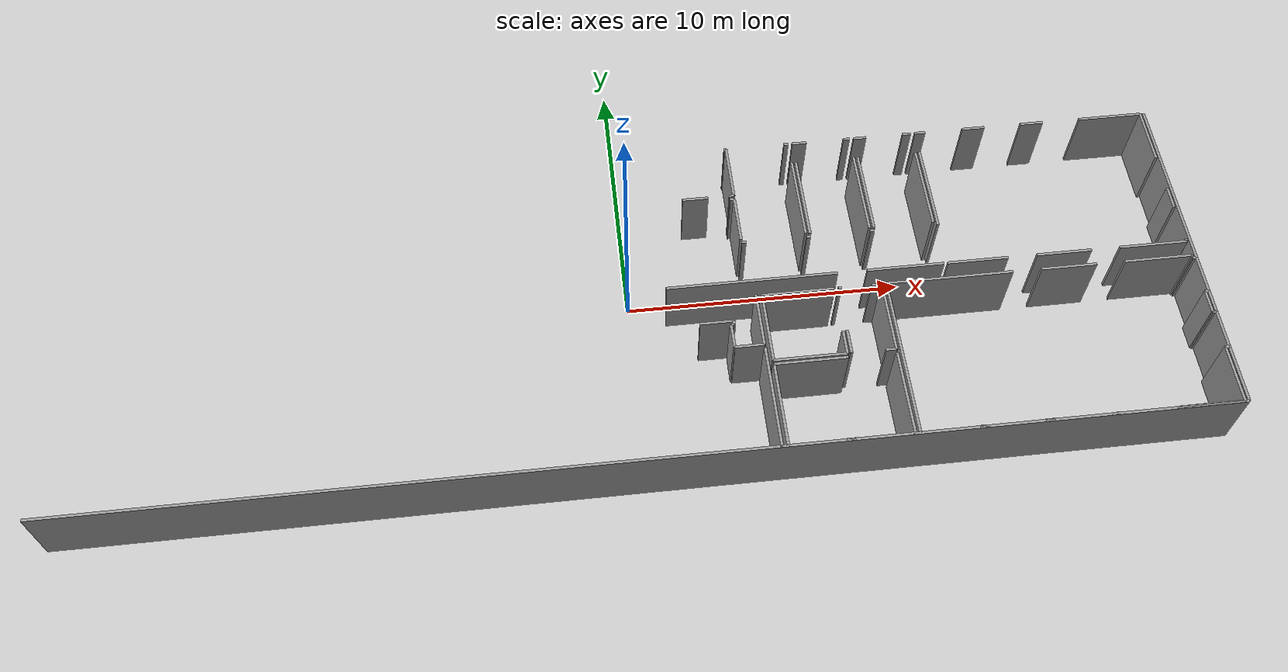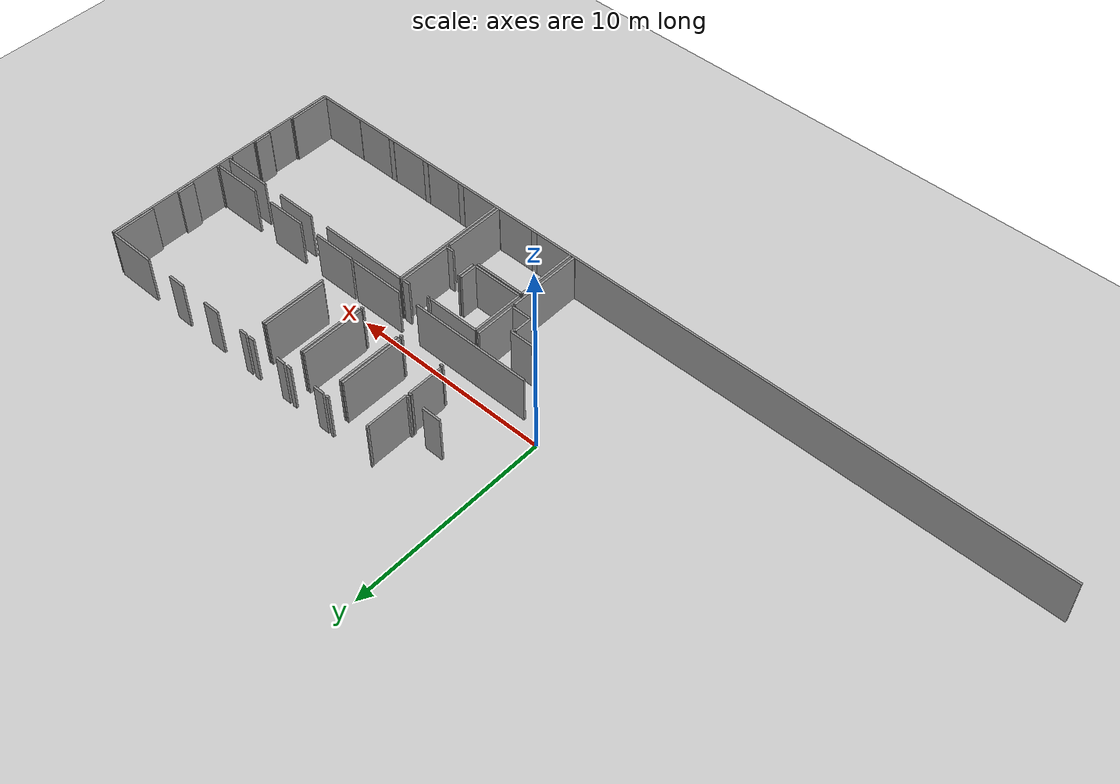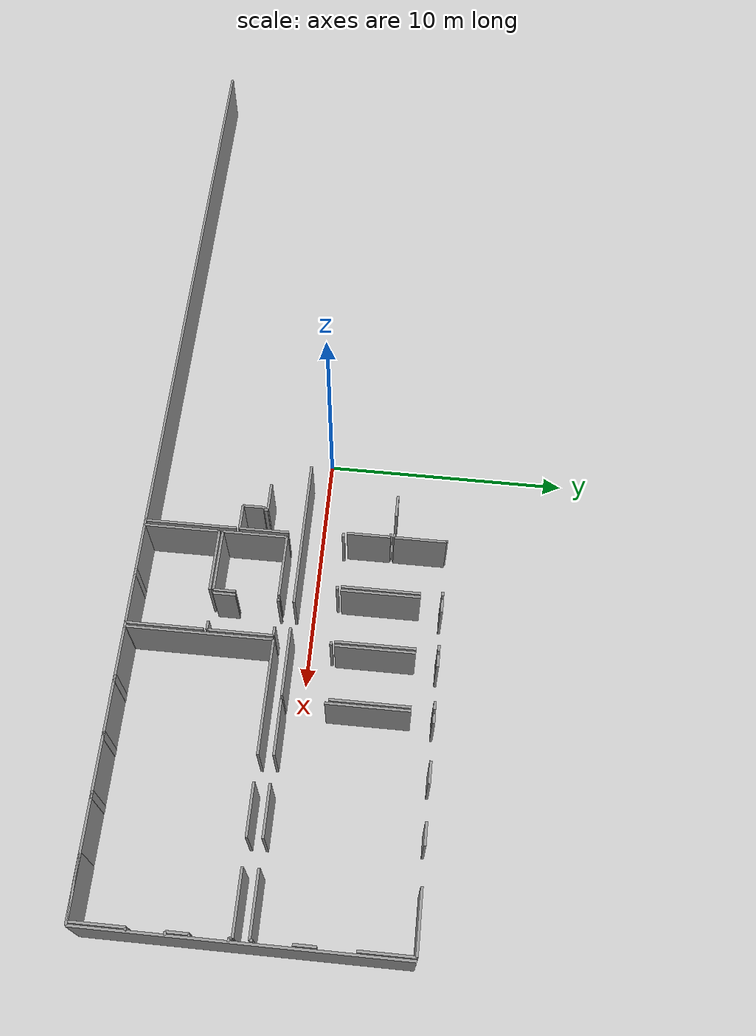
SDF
<sdf version="1.6">
 <world name="default">
  <model name="ground_plane">
   <static>1</static>
   <link name="link">
    <collision name="collision">
     <geometry><plane><normal>0 0 1</normal><size>100 100</size></plane></geometry>
     <surface><friction><ode><mu>100</mu><mu2>50</mu2></ode></friction></surface>
    </collision>
    <visual name="visual">
     <cast_shadows>0</cast_shadows>
     <geometry><plane><normal>0 0 1</normal><size>100 100</size></plane></geometry>
     <material>
      <script><uri>file://media/materials/scripts/gazebo.material</uri><name>Gazebo/Grey</name></script>
     </material>
    </visual>
   </link>
  </model>
  <model name="0510025536_Layout1_PLAN4">
   <static>1</static>
   <link name="Wall_127">
    <collision name="Wall_127_Collision">
     <geometry><box><size>3.75100074977 0.1 2.5</size></box></geometry>
     <pose>1.87550037488 0 1.25 0 0 0</pose>
    </collision>
    <visual name="Wall_127_Visual">
     <pose>1.87550037488 0 1.25 0 0 0</pose>
     <geometry><box><size>3.75100074977 0.1 2.5</size></box></geometry>
     <material>
      <script><uri>file://media/materials/scripts/gazebo.material</uri><name>Gazebo/Grey</name></script>
      <ambient>1 1 1 1</ambient>
     </material>
    </visual>
    <pose>24.5528713576 -8.61223646923 0 0 0 -1.57079632679</pose>
   </link>
   <link name="Wall_128">
    <collision name="Wall_128_Collision">
     <geometry><box><size>0.0629042711365 0.1 2.5</size></box></geometry>
     <pose>0.0314521355682 0 1.25 0 0 0</pose>
    </collision>
    <visual name="Wall_128_Visual">
     <pose>0.0314521355682 0 1.25 0 0 0</pose>
     <geometry><box><size>0.0629042711365 0.1 2.5</size></box></geometry>
     <material>
      <script><uri>file://media/materials/scripts/gazebo.material</uri><name>Gazebo/Grey</name></script>
      <ambient>1 1 1 1</ambient>
     </material>
    </visual>
    <pose>24.5528713576 -12.363237219 0 0 0 3.14159265359</pose>
   </link>
   <link name="Wall_132">
    <collision name="Wall_132_Collision">
     <geometry><box><size>2.02551753059 0.1 2.5</size></box></geometry>
     <pose>1.0127587653 0 1.25 0 0 0</pose>
    </collision>
    <visual name="Wall_132_Visual">
     <pose>1.0127587653 0 1.25 0 0 0</pose>
     <geometry><box><size>2.02551753059 0.1 2.5</size></box></geometry>
     <material>
      <script><uri>file://media/materials/scripts/gazebo.material</uri><name>Gazebo/Grey</name></script>
      <ambient>1 1 1 1</ambient>
     </material>
    </visual>
    <pose>24.5470257081 -6.45296793788 0 0 0 -1.57079632679</pose>
   </link>
   <link name="Wall_133">
    <collision name="Wall_133_Collision">
     <geometry><box><size>1.02762704757 0.1 2.5</size></box></geometry>
     <pose>0.513813523783 0 1.25 0 0 0</pose>
    </collision>
    <visual name="Wall_133_Visual">
     <pose>0.513813523783 0 1.25 0 0 0</pose>
     <geometry><box><size>1.02762704757 0.1 2.5</size></box></geometry>
     <material>
      <script><uri>file://media/materials/scripts/gazebo.material</uri><name>Gazebo/Grey</name></script>
      <ambient>1 1 1 1</ambient>
     </material>
    </visual>
    <pose>24.5470257081 -8.47848546848 0 0 0 3.14159265359</pose>
   </link>
   <link name="Wall_134">
    <collision name="Wall_134_Collision">
     <geometry><box><size>0.903470536656 0.1 2.5</size></box></geometry>
     <pose>0.451735268328 0 1.25 0 0 0</pose>
    </collision>
    <visual name="Wall_134_Visual">
     <pose>0.451735268328 0 1.25 0 0 0</pose>
     <geometry><box><size>0.903470536656 0.1 2.5</size></box></geometry>
     <material>
      <script><uri>file://media/materials/scripts/gazebo.material</uri><name>Gazebo/Grey</name></script>
      <ambient>1 1 1 1</ambient>
     </material>
    </visual>
    <pose>23.5193986606 -8.47848546848 0 0 0 1.57079632679</pose>
   </link>
   <link name="Wall_135">
    <collision name="Wall_135_Collision">
     <geometry><box><size>0.10903406997 0.1 2.5</size></box></geometry>
     <pose>0.0545170349849 0 1.25 0 0 0</pose>
    </collision>
    <visual name="Wall_135_Visual">
     <pose>0.0545170349849 0 1.25 0 0 0</pose>
     <geometry><box><size>0.10903406997 0.1 2.5</size></box></geometry>
     <material>
      <script><uri>file://media/materials/scripts/gazebo.material</uri><name>Gazebo/Grey</name></script>
      <ambient>1 1 1 1</ambient>
     </material>
    </visual>
    <pose>23.5193986606 -7.57501493182 0 0 0 0.0</pose>
   </link>
   <link name="Wall_136">
    <collision name="Wall_136_Collision">
     <geometry><box><size>0.13724568248 0.1 2.5</size></box></geometry>
     <pose>0.0686228412398 0 1.25 0 0 0</pose>
    </collision>
    <visual name="Wall_136_Visual">
     <pose>0.0686228412398 0 1.25 0 0 0</pose>
     <geometry><box><size>0.13724568248 0.1 2.5</size></box></geometry>
     <material>
      <script><uri>file://media/materials/scripts/gazebo.material</uri><name>Gazebo/Grey</name></script>
      <ambient>1 1 1 1</ambient>
     </material>
    </visual>
    <pose>23.6284327306 -7.57501493182 0 0 0 1.57079632679</pose>
   </link>
   <link name="Wall_137">
    <collision name="Wall_137_Collision">
     <geometry><box><size>1.18666683611 0.1 2.5</size></box></geometry>
     <pose>0.593333418053 0 1.25 0 0 0</pose>
    </collision>
    <visual name="Wall_137_Visual">
     <pose>0.593333418053 0 1.25 0 0 0</pose>
     <geometry><box><size>1.18666683611 0.1 2.5</size></box></geometry>
     <material>
      <script><uri>file://media/materials/scripts/gazebo.material</uri><name>Gazebo/Grey</name></script>
      <ambient>1 1 1 1</ambient>
     </material>
    </visual>
    <pose>23.6284327306 -7.43776924934 0 0 0 3.14159265359</pose>
   </link>
   <link name="Wall_146">
    <collision name="Wall_146_Collision">
     <geometry><box><size>0.150779631724 0.1 2.5</size></box></geometry>
     <pose>0.075389815862 0 1.25 0 0 0</pose>
    </collision>
    <visual name="Wall_146_Visual">
     <pose>0.075389815862 0 1.25 0 0 0</pose>
     <geometry><box><size>0.150779631724 0.1 2.5</size></box></geometry>
     <material>
      <script><uri>file://media/materials/scripts/gazebo.material</uri><name>Gazebo/Grey</name></script>
      <ambient>1 1 1 1</ambient>
     </material>
    </visual>
    <pose>24.204673978 -2.29465250156 0 0 0 0.0</pose>
   </link>
   <link name="Wall_147">
    <collision name="Wall_147_Collision">
     <geometry><box><size>1.78059752704 0.1 2.5</size></box></geometry>
     <pose>0.890298763518 0 1.25 0 0 0</pose>
    </collision>
    <visual name="Wall_147_Visual">
     <pose>0.890298763518 0 1.25 0 0 0</pose>
     <geometry><box><size>1.78059752704 0.1 2.5</size></box></geometry>
     <material>
      <script><uri>file://media/materials/scripts/gazebo.material</uri><name>Gazebo/Grey</name></script>
      <ambient>1 1 1 1</ambient>
     </material>
    </visual>
    <pose>24.3554536097 -2.29465250156 0 0 0 -1.57079632679</pose>
   </link>
   <link name="Wall_149">
    <collision name="Wall_149_Collision">
     <geometry><box><size>0.0780902517442 0.1 2.5</size></box></geometry>
     <pose>0.0390451258721 0 1.25 0 0 0</pose>
    </collision>
    <visual name="Wall_149_Visual">
     <pose>0.0390451258721 0 1.25 0 0 0</pose>
     <geometry><box><size>0.0780902517442 0.1 2.5</size></box></geometry>
     <material>
      <script><uri>file://media/materials/scripts/gazebo.material</uri><name>Gazebo/Grey</name></script>
      <ambient>1 1 1 1</ambient>
     </material>
    </visual>
    <pose>24.2828277694 -0.0017473408649 0 0 0 0.0</pose>
   </link>
   <link name="Wall_150">
    <collision name="Wall_150_Collision">
     <geometry><box><size>2.14262749234 0.1 2.5</size></box></geometry>
     <pose>1.07131374617 0 1.25 0 0 0</pose>
    </collision>
    <visual name="Wall_150_Visual">
     <pose>1.07131374617 0 1.25 0 0 0</pose>
     <geometry><box><size>2.14262749234 0.1 2.5</size></box></geometry>
     <material>
      <script><uri>file://media/materials/scripts/gazebo.material</uri><name>Gazebo/Grey</name></script>
      <ambient>1 1 1 1</ambient>
     </material>
    </visual>
    <pose>24.3609180211 -0.0017473408649 0 0 0 -1.57079632679</pose>
   </link>
   <link name="Wall_151">
    <collision name="Wall_151_Collision">
     <geometry><box><size>0.168888437051 0.1 2.5</size></box></geometry>
     <pose>0.0844442185256 0 1.25 0 0 0</pose>
    </collision>
    <visual name="Wall_151_Visual">
     <pose>0.0844442185256 0 1.25 0 0 0</pose>
     <geometry><box><size>0.168888437051 0.1 2.5</size></box></geometry>
     <material>
      <script><uri>file://media/materials/scripts/gazebo.material</uri><name>Gazebo/Grey</name></script>
      <ambient>1 1 1 1</ambient>
     </material>
    </visual>
    <pose>24.3609180211 -2.14437483321 0 0 0 3.14159265359</pose>
   </link>
   <link name="Wall_152">
    <collision name="Wall_152_Collision">
     <geometry><box><size>0.944836101306 0.1 2.5</size></box></geometry>
     <pose>0.472418050653 0 1.25 0 0 0</pose>
    </collision>
    <visual name="Wall_152_Visual">
     <pose>0.472418050653 0 1.25 0 0 0</pose>
     <geometry><box><size>0.944836101306 0.1 2.5</size></box></geometry>
     <material>
      <script><uri>file://media/materials/scripts/gazebo.material</uri><name>Gazebo/Grey</name></script>
      <ambient>1 1 1 1</ambient>
     </material>
    </visual>
    <pose>23.4098562733 -2.14437483321 0 0 0 3.13997194216</pose>
   </link>
   <link name="Wall_153">
    <collision name="Wall_153_Collision">
     <geometry><box><size>0.161517835585 0.1 2.5</size></box></geometry>
     <pose>0.0807589177924 0 1.25 0 0 0</pose>
    </collision>
    <visual name="Wall_153_Visual">
     <pose>0.0807589177924 0 1.25 0 0 0</pose>
     <geometry><box><size>0.161517835585 0.1 2.5</size></box></geometry>
     <material>
      <script><uri>file://media/materials/scripts/gazebo.material</uri><name>Gazebo/Grey</name></script>
      <ambient>1 1 1 1</ambient>
     </material>
    </visual>
    <pose>26.547635689 -0.00495609408954 0 0 0 0.0</pose>
   </link>
   <link name="Wall_154">
    <collision name="Wall_154_Collision">
     <geometry><box><size>3.18544687448 0.1 2.5</size></box></geometry>
     <pose>1.59272343724 0 1.25 0 0 0</pose>
    </collision>
    <visual name="Wall_154_Visual">
     <pose>1.59272343724 0 1.25 0 0 0</pose>
     <geometry><box><size>3.18544687448 0.1 2.5</size></box></geometry>
     <material>
      <script><uri>file://media/materials/scripts/gazebo.material</uri><name>Gazebo/Grey</name></script>
      <ambient>1 1 1 1</ambient>
     </material>
    </visual>
    <pose>26.7091535245 -0.886054313708 0 0 0 -1.57079632679</pose>
   </link>
   <link name="Wall_155">
    <collision name="Wall_155_Collision">
     <geometry><box><size>3.19793241921 0.1 2.5</size></box></geometry>
     <pose>1.5989662096 0 1.25 0 0 0</pose>
    </collision>
    <visual name="Wall_155_Visual">
     <pose>1.5989662096 0 1.25 0 0 0</pose>
     <geometry><box><size>3.19793241921 0.1 2.5</size></box></geometry>
     <material>
      <script><uri>file://media/materials/scripts/gazebo.material</uri><name>Gazebo/Grey</name></script>
      <ambient>1 1 1 1</ambient>
     </material>
    </visual>
    <pose>26.8591071406 -4.07683852029 0 0 0 1.57079632679</pose>
   </link>
   <link name="Wall_156">
    <collision name="Wall_156_Collision">
     <geometry><box><size>0.540976731774 0.1 2.5</size></box></geometry>
     <pose>0.270488365887 0 1.25 0 0 0</pose>
    </collision>
    <visual name="Wall_156_Visual">
     <pose>0.270488365887 0 1.25 0 0 0</pose>
     <geometry><box><size>0.540976731774 0.1 2.5</size></box></geometry>
     <material>
      <script><uri>file://media/materials/scripts/gazebo.material</uri><name>Gazebo/Grey</name></script>
      <ambient>1 1 1 1</ambient>
     </material>
    </visual>
    <pose>26.8591071406 -0.0053119162293 0 0 0 0.0</pose>
   </link>
   <link name="Wall_157">
    <collision name="Wall_157_Collision">
     <geometry><box><size>0.233381199883 0.1 2.5</size></box></geometry>
     <pose>0.116690599942 0 1.25 0 0 0</pose>
    </collision>
    <visual name="Wall_157_Visual">
     <pose>0.116690599942 0 1.25 0 0 0</pose>
     <geometry><box><size>0.233381199883 0.1 2.5</size></box></geometry>
     <material>
      <script><uri>file://media/materials/scripts/gazebo.material</uri><name>Gazebo/Grey</name></script>
      <ambient>1 1 1 1</ambient>
     </material>
    </visual>
    <pose>28.801641865 -0.0053119162293 0 0 0 0.0</pose>
   </link>
   <link name="Wall_158">
    <collision name="Wall_158_Collision">
     <geometry><box><size>3.19694120039 0.1 2.5</size></box></geometry>
     <pose>1.5984706002 0 1.25 0 0 0</pose>
    </collision>
    <visual name="Wall_158_Visual">
     <pose>1.5984706002 0 1.25 0 0 0</pose>
     <geometry><box><size>3.19694120039 0.1 2.5</size></box></geometry>
     <material>
      <script><uri>file://media/materials/scripts/gazebo.material</uri><name>Gazebo/Grey</name></script>
      <ambient>1 1 1 1</ambient>
     </material>
    </visual>
    <pose>29.0350230649 -0.885107572658 0 0 0 -1.57079632679</pose>
   </link>
   <link name="Wall_159">
    <collision name="Wall_159_Collision">
     <geometry><box><size>3.19403743757 0.1 2.5</size></box></geometry>
     <pose>1.59701871879 0 1.25 0 0 0</pose>
    </collision>
    <visual name="Wall_159_Visual">
     <pose>1.59701871879 0 1.25 0 0 0</pose>
     <geometry><box><size>3.19403743757 0.1 2.5</size></box></geometry>
     <material>
      <script><uri>file://media/materials/scripts/gazebo.material</uri><name>Gazebo/Grey</name></script>
      <ambient>1 1 1 1</ambient>
     </material>
    </visual>
    <pose>29.1912035684 -4.08077797969 0 0 0 1.57079632679</pose>
   </link>
   <link name="Wall_160">
    <collision name="Wall_160_Collision">
     <geometry><box><size>0.475912111931 0.1 2.5</size></box></geometry>
     <pose>0.237956055966 0 1.25 0 0 0</pose>
    </collision>
    <visual name="Wall_160_Visual">
     <pose>0.237956055966 0 1.25 0 0 0</pose>
     <geometry><box><size>0.475912111931 0.1 2.5</size></box></geometry>
     <material>
      <script><uri>file://media/materials/scripts/gazebo.material</uri><name>Gazebo/Grey</name></script>
      <ambient>1 1 1 1</ambient>
     </material>
    </visual>
    <pose>29.1912035684 -0.0053119162293 0 0 0 0.0</pose>
   </link>
   <link name="Wall_161">
    <collision name="Wall_161_Collision">
     <geometry><box><size>0.308866325247 0.1 2.5</size></box></geometry>
     <pose>0.154433162623 0 1.25 0 0 0</pose>
    </collision>
    <visual name="Wall_161_Visual">
     <pose>0.154433162623 0 1.25 0 0 0</pose>
     <geometry><box><size>0.308866325247 0.1 2.5</size></box></geometry>
     <material>
      <script><uri>file://media/materials/scripts/gazebo.material</uri><name>Gazebo/Grey</name></script>
      <ambient>1 1 1 1</ambient>
     </material>
    </visual>
    <pose>31.0627009442 -0.0053119162293 0 0 0 0.0</pose>
   </link>
   <link name="Wall_162">
    <collision name="Wall_162_Collision">
     <geometry><box><size>3.18338183528 0.1 2.5</size></box></geometry>
     <pose>1.59169091764 0 1.25 0 0 0</pose>
    </collision>
    <visual name="Wall_162_Visual">
     <pose>1.59169091764 0 1.25 0 0 0</pose>
     <geometry><box><size>3.18338183528 0.1 2.5</size></box></geometry>
     <material>
      <script><uri>file://media/materials/scripts/gazebo.material</uri><name>Gazebo/Grey</name></script>
      <ambient>1 1 1 1</ambient>
     </material>
    </visual>
    <pose>31.3715672694 -0.89167757431 0 0 0 -1.57079632679</pose>
   </link>
   <link name="Wall_163">
    <collision name="Wall_163_Collision">
     <geometry><box><size>2.62958915251 0.1 2.5</size></box></geometry>
     <pose>1.31479457625 0 1.25 0 0 0</pose>
    </collision>
    <visual name="Wall_163_Visual">
     <pose>1.31479457625 0 1.25 0 0 0</pose>
     <geometry><box><size>2.62958915251 0.1 2.5</size></box></geometry>
     <material>
      <script><uri>file://media/materials/scripts/gazebo.material</uri><name>Gazebo/Grey</name></script>
      <ambient>1 1 1 1</ambient>
     </material>
    </visual>
    <pose>24.7596929763 -9.13211803129 0 0 0 1.57079632679</pose>
   </link>
   <link name="Wall_164">
    <collision name="Wall_164_Collision">
     <geometry><box><size>2.5593142799 0.1 2.5</size></box></geometry>
     <pose>1.27965713995 0 1.25 0 0 0</pose>
    </collision>
    <visual name="Wall_164_Visual">
     <pose>1.27965713995 0 1.25 0 0 0</pose>
     <geometry><box><size>2.5593142799 0.1 2.5</size></box></geometry>
     <material>
      <script><uri>file://media/materials/scripts/gazebo.material</uri><name>Gazebo/Grey</name></script>
      <ambient>1 1 1 1</ambient>
     </material>
    </visual>
    <pose>24.7596929763 -6.50252887878 0 0 0 0.0</pose>
   </link>
   <link name="Wall_165">
    <collision name="Wall_165_Collision">
     <geometry><box><size>0.897307188878 0.1 2.5</size></box></geometry>
     <pose>0.448653594439 0 1.25 0 0 0</pose>
    </collision>
    <visual name="Wall_165_Visual">
     <pose>0.448653594439 0 1.25 0 0 0</pose>
     <geometry><box><size>0.897307188878 0.1 2.5</size></box></geometry>
     <material>
      <script><uri>file://media/materials/scripts/gazebo.material</uri><name>Gazebo/Grey</name></script>
      <ambient>1 1 1 1</ambient>
     </material>
    </visual>
    <pose>27.3190072562 -8.23728888945 0 0 0 -1.57079632679</pose>
   </link>
   <link name="Wall_166">
    <collision name="Wall_166_Collision">
     <geometry><box><size>2.55931547958 0.1 2.5</size></box></geometry>
     <pose>1.27965773979 0 1.25 0 0 0</pose>
    </collision>
    <visual name="Wall_166_Visual">
     <pose>1.27965773979 0 1.25 0 0 0</pose>
     <geometry><box><size>2.55931547958 0.1 2.5</size></box></geometry>
     <material>
      <script><uri>file://media/materials/scripts/gazebo.material</uri><name>Gazebo/Grey</name></script>
      <ambient>1 1 1 1</ambient>
     </material>
    </visual>
    <pose>27.3190072562 -9.13459607833 0 0 0 3.14062440741</pose>
   </link>
   <link name="Wall_167">
    <collision name="Wall_167_Collision">
     <geometry><box><size>3.07995831798 0.1 2.5</size></box></geometry>
     <pose>1.53997915899 0 1.25 0 0 0</pose>
    </collision>
    <visual name="Wall_167_Visual">
     <pose>1.53997915899 0 1.25 0 0 0</pose>
     <geometry><box><size>3.07995831798 0.1 2.5</size></box></geometry>
     <material>
      <script><uri>file://media/materials/scripts/gazebo.material</uri><name>Gazebo/Grey</name></script>
      <ambient>1 1 1 1</ambient>
     </material>
    </visual>
    <pose>24.7604554523 -12.3599966959 0 0 0 1.57079632679</pose>
   </link>
   <link name="Wall_168">
    <collision name="Wall_168_Collision">
     <geometry><box><size>2.56979832509 0.1 2.5</size></box></geometry>
     <pose>1.28489916255 0 1.25 0 0 0</pose>
    </collision>
    <visual name="Wall_168_Visual">
     <pose>1.28489916255 0 1.25 0 0 0</pose>
     <geometry><box><size>2.56979832509 0.1 2.5</size></box></geometry>
     <material>
      <script><uri>file://media/materials/scripts/gazebo.material</uri><name>Gazebo/Grey</name></script>
      <ambient>1 1 1 1</ambient>
     </material>
    </visual>
    <pose>24.7604554523 -9.28003837796 0 0 0 0.0</pose>
   </link>
   <link name="Wall_169">
    <collision name="Wall_169_Collision">
     <geometry><box><size>3.08446963439 0.1 2.5</size></box></geometry>
     <pose>1.5422348172 0 1.25 0 0 0</pose>
    </collision>
    <visual name="Wall_169_Visual">
     <pose>1.5422348172 0 1.25 0 0 0</pose>
     <geometry><box><size>3.08446963439 0.1 2.5</size></box></geometry>
     <material>
      <script><uri>file://media/materials/scripts/gazebo.material</uri><name>Gazebo/Grey</name></script>
      <ambient>1 1 1 1</ambient>
     </material>
    </visual>
    <pose>29.0118946258 -9.28003837796 0 0 0 -1.57079632679</pose>
   </link>
   <link name="Wall_170">
    <collision name="Wall_170_Collision">
     <geometry><box><size>0.0640479851571 0.1 2.5</size></box></geometry>
     <pose>0.0320239925786 0 1.25 0 0 0</pose>
    </collision>
    <visual name="Wall_170_Visual">
     <pose>0.0320239925786 0 1.25 0 0 0</pose>
     <geometry><box><size>0.0640479851571 0.1 2.5</size></box></geometry>
     <material>
      <script><uri>file://media/materials/scripts/gazebo.material</uri><name>Gazebo/Grey</name></script>
      <ambient>1 1 1 1</ambient>
     </material>
    </visual>
    <pose>29.0118946258 -12.3645080124 0 0 0 3.14159265359</pose>
   </link>
   <link name="Wall_171">
    <collision name="Wall_171_Collision">
     <geometry><box><size>0.293680344639 0.1 2.5</size></box></geometry>
     <pose>0.14684017232 0 1.25 0 0 0</pose>
    </collision>
    <visual name="Wall_171_Visual">
     <pose>0.14684017232 0 1.25 0 0 0</pose>
     <geometry><box><size>0.293680344639 0.1 2.5</size></box></geometry>
     <material>
      <script><uri>file://media/materials/scripts/gazebo.material</uri><name>Gazebo/Grey</name></script>
      <ambient>1 1 1 1</ambient>
     </material>
    </visual>
    <pose>27.0191635638 -12.3645080124 0 0 0 3.14159265359</pose>
   </link>
   <link name="Wall_172">
    <collision name="Wall_172_Collision">
     <geometry><box><size>0.0305794842291 0.1 2.5</size></box></geometry>
     <pose>0.0152897421145 0 1.25 0 0 0</pose>
    </collision>
    <visual name="Wall_172_Visual">
     <pose>0.0152897421145 0 1.25 0 0 0</pose>
     <geometry><box><size>0.0305794842291 0.1 2.5</size></box></geometry>
     <material>
      <script><uri>file://media/materials/scripts/gazebo.material</uri><name>Gazebo/Grey</name></script>
      <ambient>1 1 1 1</ambient>
     </material>
    </visual>
    <pose>24.7907003342 -12.3645080124 0 0 0 2.99352465175</pose>
   </link>
   <link name="Wall_173">
    <collision name="Wall_173_Collision">
     <geometry><box><size>0.901945584628 0.1 2.5</size></box></geometry>
     <pose>0.450972792314 0 1.25 0 0 0</pose>
    </collision>
    <visual name="Wall_173_Visual">
     <pose>0.450972792314 0 1.25 0 0 0</pose>
     <geometry><box><size>0.901945584628 0.1 2.5</size></box></geometry>
     <material>
      <script><uri>file://media/materials/scripts/gazebo.material</uri><name>Gazebo/Grey</name></script>
      <ambient>1 1 1 1</ambient>
     </material>
    </visual>
    <pose>27.4616538105 -9.13078369826 0 0 0 1.57079632679</pose>
   </link>
   <link name="Wall_174">
    <collision name="Wall_174_Collision">
     <geometry><box><size>0.112083974025 0.1 2.5</size></box></geometry>
     <pose>0.0560419870125 0 1.25 0 0 0</pose>
    </collision>
    <visual name="Wall_174_Visual">
     <pose>0.0560419870125 0 1.25 0 0 0</pose>
     <geometry><box><size>0.112083974025 0.1 2.5</size></box></geometry>
     <material>
      <script><uri>file://media/materials/scripts/gazebo.material</uri><name>Gazebo/Grey</name></script>
      <ambient>1 1 1 1</ambient>
     </material>
    </visual>
    <pose>27.4616538105 -6.49769986403 0 0 0 0.0</pose>
   </link>
   <link name="Wall_175">
    <collision name="Wall_175_Collision">
     <geometry><box><size>0.369737327013 0.1 2.5</size></box></geometry>
     <pose>0.184868663507 0 1.25 0 0 0</pose>
    </collision>
    <visual name="Wall_175_Visual">
     <pose>0.184868663507 0 1.25 0 0 0</pose>
     <geometry><box><size>0.369737327013 0.1 2.5</size></box></geometry>
     <material>
      <script><uri>file://media/materials/scripts/gazebo.material</uri><name>Gazebo/Grey</name></script>
      <ambient>1 1 1 1</ambient>
     </material>
    </visual>
    <pose>28.6462873772 -6.49769986403 0 0 0 0.0</pose>
   </link>
   <link name="Wall_176">
    <collision name="Wall_176_Collision">
     <geometry><box><size>2.63689621431 0.1 2.5</size></box></geometry>
     <pose>1.31844810715 0 1.25 0 0 0</pose>
    </collision>
    <visual name="Wall_176_Visual">
     <pose>1.31844810715 0 1.25 0 0 0</pose>
     <geometry><box><size>2.63689621431 0.1 2.5</size></box></geometry>
     <material>
      <script><uri>file://media/materials/scripts/gazebo.material</uri><name>Gazebo/Grey</name></script>
      <ambient>1 1 1 1</ambient>
     </material>
    </visual>
    <pose>29.0160247042 -6.49769986403 0 0 0 -1.57079632679</pose>
   </link>
   <link name="Wall_177">
    <collision name="Wall_177_Collision">
     <geometry><box><size>0.367640517975 0.1 2.5</size></box></geometry>
     <pose>0.183820258988 0 1.25 0 0 0</pose>
    </collision>
    <visual name="Wall_177_Visual">
     <pose>0.183820258988 0 1.25 0 0 0</pose>
     <geometry><box><size>0.367640517975 0.1 2.5</size></box></geometry>
     <material>
      <script><uri>file://media/materials/scripts/gazebo.material</uri><name>Gazebo/Grey</name></script>
      <ambient>1 1 1 1</ambient>
     </material>
    </visual>
    <pose>29.0160247042 -9.13459607833 0 0 0 3.14159265359</pose>
   </link>
   <link name="Wall_178">
    <collision name="Wall_178_Collision">
     <geometry><box><size>0.151669187073 0.1 2.5</size></box></geometry>
     <pose>0.0758345935367 0 1.25 0 0 0</pose>
    </collision>
    <visual name="Wall_178_Visual">
     <pose>0.0758345935367 0 1.25 0 0 0</pose>
     <geometry><box><size>0.151669187073 0.1 2.5</size></box></geometry>
     <material>
      <script><uri>file://media/materials/scripts/gazebo.material</uri><name>Gazebo/Grey</name></script>
      <ambient>1 1 1 1</ambient>
     </material>
    </visual>
    <pose>24.3672084482 -4.2195486142 0 0 0 0.0</pose>
   </link>
   <link name="Wall_179">
    <collision name="Wall_179_Collision">
     <geometry><box><size>0.142519474908 0.1 2.5</size></box></geometry>
     <pose>0.0712597374541 0 1.25 0 0 0</pose>
    </collision>
    <visual name="Wall_179_Visual">
     <pose>0.0712597374541 0 1.25 0 0 0</pose>
     <geometry><box><size>0.142519474908 0.1 2.5</size></box></geometry>
     <material>
      <script><uri>file://media/materials/scripts/gazebo.material</uri><name>Gazebo/Grey</name></script>
      <ambient>1 1 1 1</ambient>
     </material>
    </visual>
    <pose>26.7127117459 -4.2195486142 0 0 0 0.0</pose>
   </link>
   <link name="Wall_180">
    <collision name="Wall_180_Collision">
     <geometry><box><size>0.143409030258 0.1 2.5</size></box></geometry>
     <pose>0.0717045151288 0 1.25 0 0 0</pose>
    </collision>
    <visual name="Wall_180_Visual">
     <pose>0.0717045151288 0 1.25 0 0 0</pose>
     <geometry><box><size>0.143409030258 0.1 2.5</size></box></geometry>
     <material>
      <script><uri>file://media/materials/scripts/gazebo.material</uri><name>Gazebo/Grey</name></script>
      <ambient>1 1 1 1</ambient>
     </material>
    </visual>
    <pose>29.0389625243 -4.2195486142 0 0 0 0.0</pose>
   </link>
   <link name="Wall_181">
    <collision name="Wall_181_Collision">
     <geometry><box><size>2.76677129532 0.1 2.5</size></box></geometry>
     <pose>1.38338564766 0 1.25 0 0 0</pose>
    </collision>
    <visual name="Wall_181_Visual">
     <pose>1.38338564766 0 1.25 0 0 0</pose>
     <geometry><box><size>2.76677129532 0.1 2.5</size></box></geometry>
     <material>
      <script><uri>file://media/materials/scripts/gazebo.material</uri><name>Gazebo/Grey</name></script>
      <ambient>1 1 1 1</ambient>
     </material>
    </visual>
    <pose>31.3797638866 -5.87119873937 0 0 0 3.14159265359</pose>
   </link>
   <link name="Wall_182">
    <collision name="Wall_182_Collision">
     <geometry><box><size>6.1033663316 0.1 2.5</size></box></geometry>
     <pose>3.0516831658 0 1.25 0 0 0</pose>
    </collision>
    <visual name="Wall_182_Visual">
     <pose>3.0516831658 0 1.25 0 0 0</pose>
     <geometry><box><size>6.1033663316 0.1 2.5</size></box></geometry>
     <material>
      <script><uri>file://media/materials/scripts/gazebo.material</uri><name>Gazebo/Grey</name></script>
      <ambient>1 1 1 1</ambient>
     </material>
    </visual>
    <pose>27.5516259801 -5.87119873937 0 0 0 3.14159265359</pose>
   </link>
   <link name="Wall_190">
    <collision name="Wall_190_Collision">
     <geometry><box><size>0.394136559454 0.1 2.5</size></box></geometry>
     <pose>0.197068279727 0 1.25 0 0 0</pose>
    </collision>
    <visual name="Wall_190_Visual">
     <pose>0.197068279727 0 1.25 0 0 0</pose>
     <geometry><box><size>0.394136559454 0.1 2.5</size></box></geometry>
     <material>
      <script><uri>file://media/materials/scripts/gazebo.material</uri><name>Gazebo/Grey</name></script>
      <ambient>1 1 1 1</ambient>
     </material>
    </visual>
    <pose>31.5302893596 -0.00292282471947 0 0 0 0.0</pose>
   </link>
   <link name="Wall_191">
    <collision name="Wall_191_Collision">
     <geometry><box><size>0.85276588174 0.1 2.5</size></box></geometry>
     <pose>0.42638294087 0 1.25 0 0 0</pose>
    </collision>
    <visual name="Wall_191_Visual">
     <pose>0.42638294087 0 1.25 0 0 0</pose>
     <geometry><box><size>0.85276588174 0.1 2.5</size></box></geometry>
     <material>
      <script><uri>file://media/materials/scripts/gazebo.material</uri><name>Gazebo/Grey</name></script>
      <ambient>1 1 1 1</ambient>
     </material>
    </visual>
    <pose>33.3432667014 -0.00292282471947 0 0 0 0.0</pose>
   </link>
   <link name="Wall_192">
    <collision name="Wall_192_Collision">
     <geometry><box><size>0.860708340217 0.1 2.5</size></box></geometry>
     <pose>0.430354170108 0 1.25 0 0 0</pose>
    </collision>
    <visual name="Wall_192_Visual">
     <pose>0.430354170108 0 1.25 0 0 0</pose>
     <geometry><box><size>0.860708340217 0.1 2.5</size></box></geometry>
     <material>
      <script><uri>file://media/materials/scripts/gazebo.material</uri><name>Gazebo/Grey</name></script>
      <ambient>1 1 1 1</ambient>
     </material>
    </visual>
    <pose>35.5880596256 -0.00292282471947 0 0 0 0.0</pose>
   </link>
   <link name="Wall_193">
    <collision name="Wall_193_Collision">
     <geometry><box><size>2.37854392497 0.1 2.5</size></box></geometry>
     <pose>1.18927196249 0 1.25 0 0 0</pose>
    </collision>
    <visual name="Wall_193_Visual">
     <pose>1.18927196249 0 1.25 0 0 0</pose>
     <geometry><box><size>2.37854392497 0.1 2.5</size></box></geometry>
     <material>
      <script><uri>file://media/materials/scripts/gazebo.material</uri><name>Gazebo/Grey</name></script>
      <ambient>1 1 1 1</ambient>
     </material>
    </visual>
    <pose>37.8576330203 -0.00292282471947 0 0 0 0.0</pose>
   </link>
   <link name="Wall_194">
    <collision name="Wall_194_Collision">
     <geometry><box><size>2.10266739525 0.1 2.5</size></box></geometry>
     <pose>1.05133369763 0 1.25 0 0 0</pose>
    </collision>
    <visual name="Wall_194_Visual">
     <pose>1.05133369763 0 1.25 0 0 0</pose>
     <geometry><box><size>2.10266739525 0.1 2.5</size></box></geometry>
     <material>
      <script><uri>file://media/materials/scripts/gazebo.material</uri><name>Gazebo/Grey</name></script>
      <ambient>1 1 1 1</ambient>
     </material>
    </visual>
    <pose>40.2361769453 -0.00292282471947 0 0 0 -1.57079632679</pose>
   </link>
   <link name="Wall_195">
    <collision name="Wall_195_Collision">
     <geometry><box><size>0.85683242048 0.1 2.5</size></box></geometry>
     <pose>0.42841621024 0 1.25 0 0 0</pose>
    </collision>
    <visual name="Wall_195_Visual">
     <pose>0.42841621024 0 1.25 0 0 0</pose>
     <geometry><box><size>0.85683242048 0.1 2.5</size></box></geometry>
     <material>
      <script><uri>file://media/materials/scripts/gazebo.material</uri><name>Gazebo/Grey</name></script>
      <ambient>1 1 1 1</ambient>
     </material>
    </visual>
    <pose>40.2361769453 -3.5112083974 0 0 0 -1.57079632679</pose>
   </link>
   <link name="Wall_196">
    <collision name="Wall_196_Collision">
     <geometry><box><size>0.104776912226 0.1 2.5</size></box></geometry>
     <pose>0.0523884561132 0 1.25 0 0 0</pose>
    </collision>
    <visual name="Wall_196_Visual">
     <pose>0.0523884561132 0 1.25 0 0 0</pose>
     <geometry><box><size>0.104776912226 0.1 2.5</size></box></geometry>
     <material>
      <script><uri>file://media/materials/scripts/gazebo.material</uri><name>Gazebo/Grey</name></script>
      <ambient>1 1 1 1</ambient>
     </material>
    </visual>
    <pose>40.2361769453 -5.76521457346 0 0 0 -1.57079632679</pose>
   </link>
   <link name="Wall_197">
    <collision name="Wall_197_Collision">
     <geometry><box><size>2.45269471731 0.1 2.5</size></box></geometry>
     <pose>1.22634735866 0 1.25 0 0 0</pose>
    </collision>
    <visual name="Wall_197_Visual">
     <pose>1.22634735866 0 1.25 0 0 0</pose>
     <geometry><box><size>2.45269471731 0.1 2.5</size></box></geometry>
     <material>
      <script><uri>file://media/materials/scripts/gazebo.material</uri><name>Gazebo/Grey</name></script>
      <ambient>1 1 1 1</ambient>
     </material>
    </visual>
    <pose>40.2361769453 -5.86999148568 0 0 0 3.14159265359</pose>
   </link>
   <link name="Wall_198">
    <collision name="Wall_198_Collision">
     <geometry><box><size>1.992349824 0.1 2.5</size></box></geometry>
     <pose>0.996174911998 0 1.25 0 0 0</pose>
    </collision>
    <visual name="Wall_198_Visual">
     <pose>0.996174911998 0 1.25 0 0 0</pose>
     <geometry><box><size>1.992349824 0.1 2.5</size></box></geometry>
     <material>
      <script><uri>file://media/materials/scripts/gazebo.material</uri><name>Gazebo/Grey</name></script>
      <ambient>1 1 1 1</ambient>
     </material>
    </visual>
    <pose>36.7449898972 -5.86999148568 0 0 0 3.14159265359</pose>
   </link>
   <link name="Wall_199">
    <collision name="Wall_199_Collision">
     <geometry><box><size>2.18214281176 0.1 2.5</size></box></geometry>
     <pose>1.09107140588 0 1.25 0 0 0</pose>
    </collision>
    <visual name="Wall_199_Visual">
     <pose>1.09107140588 0 1.25 0 0 0</pose>
     <geometry><box><size>2.18214281176 0.1 2.5</size></box></geometry>
     <material>
      <script><uri>file://media/materials/scripts/gazebo.material</uri><name>Gazebo/Grey</name></script>
      <ambient>1 1 1 1</ambient>
     </material>
    </visual>
    <pose>33.7010585709 -5.86999148568 0 0 0 3.14159265359</pose>
   </link>
   <link name="Wall_200">
    <collision name="Wall_200_Collision">
     <geometry><box><size>3.32391251859 0.1 2.5</size></box></geometry>
     <pose>1.66195625929 0 1.25 0 0 0</pose>
    </collision>
    <visual name="Wall_200_Visual">
     <pose>1.66195625929 0 1.25 0 0 0</pose>
     <geometry><box><size>3.32391251859 0.1 2.5</size></box></geometry>
     <material>
      <script><uri>file://media/materials/scripts/gazebo.material</uri><name>Gazebo/Grey</name></script>
      <ambient>1 1 1 1</ambient>
     </material>
    </visual>
    <pose>31.5189157591 -4.20607820462 0 0 0 1.57079632679</pose>
   </link>
   <link name="Wall_201">
    <collision name="Wall_201_Collision">
     <geometry><box><size>5.89000012708 0.1 2.5</size></box></geometry>
     <pose>2.94500006354 0 1.25 0 0 0</pose>
    </collision>
    <visual name="Wall_201_Visual">
     <pose>2.94500006354 0 1.25 0 0 0</pose>
     <geometry><box><size>5.89000012708 0.1 2.5</size></box></geometry>
     <material>
      <script><uri>file://media/materials/scripts/gazebo.material</uri><name>Gazebo/Grey</name></script>
      <ambient>1 1 1 1</ambient>
     </material>
    </visual>
    <pose>29.1771613018 -12.3662871231 0 0 0 1.57079632679</pose>
   </link>
   <link name="Wall_202">
    <collision name="Wall_202_Collision">
     <geometry><box><size>4.55617542031 0.1 2.5</size></box></geometry>
     <pose>2.27808771016 0 1.25 0 0 0</pose>
    </collision>
    <visual name="Wall_202_Visual">
     <pose>2.27808771016 0 1.25 0 0 0</pose>
     <geometry><box><size>4.55617542031 0.1 2.5</size></box></geometry>
     <material>
      <script><uri>file://media/materials/scripts/gazebo.material</uri><name>Gazebo/Grey</name></script>
      <ambient>1 1 1 1</ambient>
     </material>
    </visual>
    <pose>29.1771613018 -6.47628699597 0 0 0 0.0</pose>
   </link>
   <link name="Wall_203">
    <collision name="Wall_203_Collision">
     <geometry><box><size>2.01541472341 0.1 2.5</size></box></geometry>
     <pose>1.00770736171 0 1.25 0 0 0</pose>
    </collision>
    <visual name="Wall_203_Visual">
     <pose>1.00770736171 0 1.25 0 0 0</pose>
     <geometry><box><size>2.01541472341 0.1 2.5</size></box></geometry>
     <material>
      <script><uri>file://media/materials/scripts/gazebo.material</uri><name>Gazebo/Grey</name></script>
      <ambient>1 1 1 1</ambient>
     </material>
    </visual>
    <pose>34.7573420086 -6.47628699597 0 0 0 0.0</pose>
   </link>
   <link name="Wall_204">
    <collision name="Wall_204_Collision">
     <geometry><box><size>2.42861318321 0.1 2.5</size></box></geometry>
     <pose>1.21430659161 0 1.25 0 0 0</pose>
    </collision>
    <visual name="Wall_204_Visual">
     <pose>1.21430659161 0 1.25 0 0 0</pose>
     <geometry><box><size>2.42861318321 0.1 2.5</size></box></geometry>
     <material>
      <script><uri>file://media/materials/scripts/gazebo.material</uri><name>Gazebo/Grey</name></script>
      <ambient>1 1 1 1</ambient>
     </material>
    </visual>
    <pose>37.7987952879 -6.47628699597 0 0 0 0.0</pose>
   </link>
   <link name="Wall_205">
    <collision name="Wall_205_Collision">
     <geometry><box><size>0.120598289512 0.1 2.5</size></box></geometry>
     <pose>0.0602991447561 0 1.25 0 0 0</pose>
    </collision>
    <visual name="Wall_205_Visual">
     <pose>0.0602991447561 0 1.25 0 0 0</pose>
     <geometry><box><size>0.120598289512 0.1 2.5</size></box></geometry>
     <material>
      <script><uri>file://media/materials/scripts/gazebo.material</uri><name>Gazebo/Grey</name></script>
      <ambient>1 1 1 1</ambient>
     </material>
    </visual>
    <pose>40.2274084711 -6.47628699597 0 0 0 -1.57079632679</pose>
   </link>
   <link name="Wall_206">
    <collision name="Wall_206_Collision">
     <geometry><box><size>0.1383893965 0.1 2.5</size></box></geometry>
     <pose>0.0691946982501 0 1.25 0 0 0</pose>
    </collision>
    <visual name="Wall_206_Visual">
     <pose>0.0691946982501 0 1.25 0 0 0</pose>
     <geometry><box><size>0.1383893965 0.1 2.5</size></box></geometry>
     <material>
      <script><uri>file://media/materials/scripts/gazebo.material</uri><name>Gazebo/Grey</name></script>
      <ambient>1 1 1 1</ambient>
     </material>
    </visual>
    <pose>40.2274084711 -6.59688528548 0 0 0 0.0</pose>
   </link>
   <link name="Wall_207">
    <collision name="Wall_207_Collision">
     <geometry><box><size>0.127524113304 0.1 2.5</size></box></geometry>
     <pose>0.063762056652 0 1.25 0 0 0</pose>
    </collision>
    <visual name="Wall_207_Visual">
     <pose>0.063762056652 0 1.25 0 0 0</pose>
     <geometry><box><size>0.127524113304 0.1 2.5</size></box></geometry>
     <material>
      <script><uri>file://media/materials/scripts/gazebo.material</uri><name>Gazebo/Grey</name></script>
      <ambient>1 1 1 1</ambient>
     </material>
    </visual>
    <pose>40.3657978676 -8.00581387961 0 0 0 3.14159265359</pose>
   </link>
   <link name="Wall_208">
    <collision name="Wall_208_Collision">
     <geometry><box><size>0.845712978613 0.1 2.5</size></box></geometry>
     <pose>0.422856489306 0 1.25 0 0 0</pose>
    </collision>
    <visual name="Wall_208_Visual">
     <pose>0.422856489306 0 1.25 0 0 0</pose>
     <geometry><box><size>0.845712978613 0.1 2.5</size></box></geometry>
     <material>
      <script><uri>file://media/materials/scripts/gazebo.material</uri><name>Gazebo/Grey</name></script>
      <ambient>1 1 1 1</ambient>
     </material>
    </visual>
    <pose>40.2382737543 -8.00581387961 0 0 0 -1.57079632679</pose>
   </link>
   <link name="Wall_209">
    <collision name="Wall_209_Collision">
     <geometry><box><size>0.126698097622 0.1 2.5</size></box></geometry>
     <pose>0.0633490488112 0 1.25 0 0 0</pose>
    </collision>
    <visual name="Wall_209_Visual">
     <pose>0.0633490488112 0 1.25 0 0 0</pose>
     <geometry><box><size>0.126698097622 0.1 2.5</size></box></geometry>
     <material>
      <script><uri>file://media/materials/scripts/gazebo.material</uri><name>Gazebo/Grey</name></script>
      <ambient>1 1 1 1</ambient>
     </material>
    </visual>
    <pose>40.2382737543 -8.85152685822 0 0 0 0.0</pose>
   </link>
   <link name="Wall_210">
    <collision name="Wall_210_Collision">
     <geometry><box><size>0.131082334702 0.1 2.5</size></box></geometry>
     <pose>0.0655411673508 0 1.25 0 0 0</pose>
    </collision>
    <visual name="Wall_210_Visual">
     <pose>0.0655411673508 0 1.25 0 0 0</pose>
     <geometry><box><size>0.131082334702 0.1 2.5</size></box></geometry>
     <material>
      <script><uri>file://media/materials/scripts/gazebo.material</uri><name>Gazebo/Grey</name></script>
      <ambient>1 1 1 1</ambient>
     </material>
    </visual>
    <pose>40.3649718519 -10.259565897 0 0 0 3.14159265359</pose>
   </link>
   <link name="Wall_211">
    <collision name="Wall_211_Collision">
     <geometry><box><size>2.10043079895 0.1 2.5</size></box></geometry>
     <pose>1.05021539947 0 1.25 0 0 0</pose>
    </collision>
    <visual name="Wall_211_Visual">
     <pose>1.05021539947 0 1.25 0 0 0</pose>
     <geometry><box><size>2.10043079895 0.1 2.5</size></box></geometry>
     <material>
      <script><uri>file://media/materials/scripts/gazebo.material</uri><name>Gazebo/Grey</name></script>
      <ambient>1 1 1 1</ambient>
     </material>
    </visual>
    <pose>40.2338895172 -10.259565897 0 0 0 -1.57079632679</pose>
   </link>
   <link name="Wall_212">
    <collision name="Wall_212_Collision">
     <geometry><box><size>2.34378772668 0.1 2.5</size></box></geometry>
     <pose>1.17189386334 0 1.25 0 0 0</pose>
    </collision>
    <visual name="Wall_212_Visual">
     <pose>1.17189386334 0 1.25 0 0 0</pose>
     <geometry><box><size>2.34378772668 0.1 2.5</size></box></geometry>
     <material>
      <script><uri>file://media/materials/scripts/gazebo.material</uri><name>Gazebo/Grey</name></script>
      <ambient>1 1 1 1</ambient>
     </material>
    </visual>
    <pose>40.2338895172 -12.3599966959 0 0 0 3.14159265359</pose>
   </link>
   <link name="Wall_213">
    <collision name="Wall_213_Collision">
     <geometry><box><size>0.301813422119 0.1 2.5</size></box></geometry>
     <pose>0.15090671106 0 1.25 0 0 0</pose>
    </collision>
    <visual name="Wall_213_Visual">
     <pose>0.15090671106 0 1.25 0 0 0</pose>
     <geometry><box><size>0.301813422119 0.1 2.5</size></box></geometry>
     <material>
      <script><uri>file://media/materials/scripts/gazebo.material</uri><name>Gazebo/Grey</name></script>
      <ambient>1 1 1 1</ambient>
     </material>
    </visual>
    <pose>35.9482660025 -12.3599966959 0 0 0 3.14159265359</pose>
   </link>
   <link name="Wall_214">
    <collision name="Wall_214_Collision">
     <geometry><box><size>0.308802785579 0.1 2.5</size></box></geometry>
     <pose>0.15440139279 0 1.25 0 0 0</pose>
    </collision>
    <visual name="Wall_214_Visual">
     <pose>0.15440139279 0 1.25 0 0 0</pose>
     <geometry><box><size>0.308802785579 0.1 2.5</size></box></geometry>
     <material>
      <script><uri>file://media/materials/scripts/gazebo.material</uri><name>Gazebo/Grey</name></script>
      <ambient>1 1 1 1</ambient>
     </material>
    </visual>
    <pose>33.7193579952 -12.3599966959 0 0 0 3.14159265359</pose>
   </link>
   <link name="Wall_215">
    <collision name="Wall_215_Collision">
     <geometry><box><size>0.314330736679 0.1 2.5</size></box></geometry>
     <pose>0.157165368339 0 1.25 0 0 0</pose>
    </collision>
    <visual name="Wall_215_Visual">
     <pose>0.157165368339 0 1.25 0 0 0</pose>
     <geometry><box><size>0.314330736679 0.1 2.5</size></box></geometry>
     <material>
      <script><uri>file://media/materials/scripts/gazebo.material</uri><name>Gazebo/Grey</name></script>
      <ambient>1 1 1 1</ambient>
     </material>
    </visual>
    <pose>31.4889885756 -12.3599966959 0 0 0 3.14159265359</pose>
   </link>
   <link name="Wall_216">
    <collision name="Wall_216_Collision">
     <geometry><box><size>0.0694167599374 0.1 2.5</size></box></geometry>
     <pose>0.0347083799687 0 1.25 0 0 0</pose>
    </collision>
    <visual name="Wall_216_Visual">
     <pose>0.0347083799687 0 1.25 0 0 0</pose>
     <geometry><box><size>0.0694167599374 0.1 2.5</size></box></geometry>
     <material>
      <script><uri>file://media/materials/scripts/gazebo.material</uri><name>Gazebo/Grey</name></script>
      <ambient>1 1 1 1</ambient>
     </material>
    </visual>
    <pose>29.2462924604 -12.3599966959 0 0 0 -3.05084989575</pose>
   </link>
   <link name="Wall_217">
    <collision name="Wall_217_Collision">
     <geometry><box><size>12.3694641064 0.1 2.5</size></box></geometry>
     <pose>6.18473205322 0 1.25 0 0 0</pose>
    </collision>
    <visual name="Wall_217_Visual">
     <pose>6.18473205322 0 1.25 0 0 0</pose>
     <geometry><box><size>12.3694641064 0.1 2.5</size></box></geometry>
     <material>
      <script><uri>file://media/materials/scripts/gazebo.material</uri><name>Gazebo/Grey</name></script>
      <ambient>1 1 1 1</ambient>
     </material>
    </visual>
    <pose>40.3657978676 -12.3694641064 0 0 0 1.57079632679</pose>
   </link>
   <link name="Wall_218">
    <collision name="Wall_218_Collision">
     <geometry><box><size>40.3657978676 0.1 2.5</size></box></geometry>
     <pose>20.1828989338 0 1.25 0 0 0</pose>
    </collision>
    <visual name="Wall_218_Visual">
     <pose>20.1828989338 0 1.25 0 0 0</pose>
     <geometry><box><size>40.3657978676 0.1 2.5</size></box></geometry>
     <material>
      <script><uri>file://media/materials/scripts/gazebo.material</uri><name>Gazebo/Grey</name></script>
      <ambient>1 1 1 1</ambient>
     </material>
    </visual>
    <pose>40.3657978676 -12.3694641064 0 0 0 3.14159265359</pose>
   </link>
   <pose>-20.15 5.16946410644 0 0 0 0</pose>
  </model>
 </world>
</sdf>
